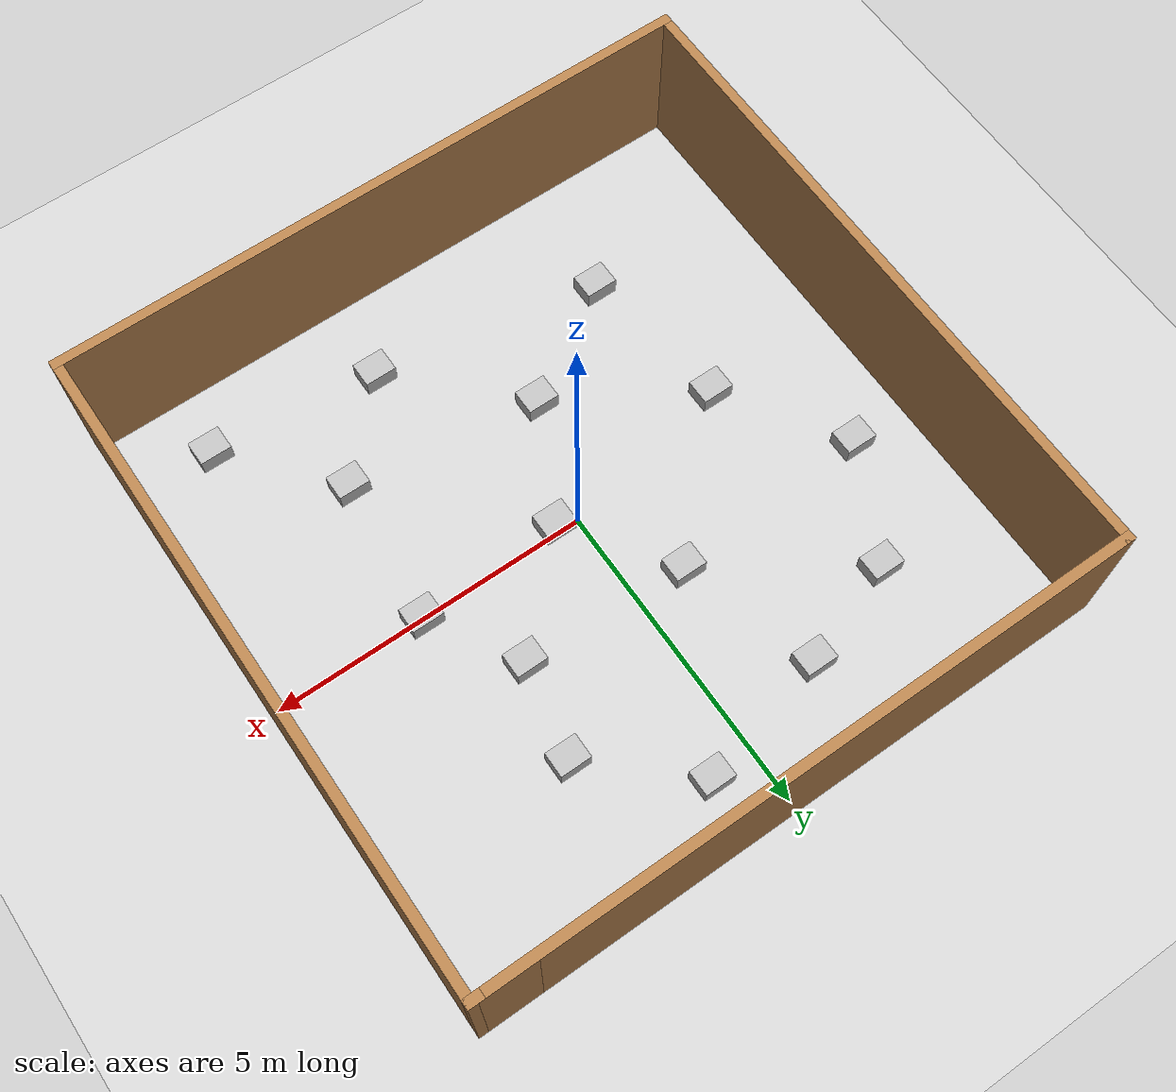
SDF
<sdf version="1.7">
 <world name="default">
  <light name="sun" type="directional">
   <pose>0 0 10 0 -0 0</pose>
   <diffuse>0.8 0.8 0.8 1</diffuse>
   <specular>0.2 0.2 0.2 1</specular>
   <attenuation>
    <range>1000</range>
    <constant>0.9</constant>
    <linear>0.01</linear>
    <quadratic>0.001</quadratic>
   </attenuation>
   <direction>-0.5 0.1 -0.9</direction>
   <spot><inner_angle>0</inner_angle><outer_angle>0</outer_angle><falloff>0</falloff></spot>
  </light>
  <model name="ground_plane">
   <static>1</static>
   <link name="link">
    <collision name="collision">
     <geometry><plane><normal>0 0 1</normal><size>100 100</size></plane></geometry>
     <surface>
      <contact><collide_bitmask>65535</collide_bitmask></contact>
      <friction><ode><mu>100</mu><mu2>50</mu2></ode></friction>
     </surface>
    </collision>
    <visual name="visual">
     <cast_shadows>0</cast_shadows>
     <geometry><plane><normal>0 0 1</normal><size>100 100</size></plane></geometry>
     <material>
      <script><uri>file://media/materials/scripts/gazebo.material</uri><name>Gazebo/Grey</name></script>
     </material>
    </visual>
   </link>
  </model>
  <gravity>0 0 -9.8</gravity>
  <magnetic_field>6e-06 2.3e-05 -4.2e-05</magnetic_field>
  <atmosphere type="adiabatic"/>
  <physics type="ode">
   <max_step_size>0.001</max_step_size>
   <real_time_factor>1</real_time_factor>
   <real_time_update_rate>1000</real_time_update_rate>
  </physics>
  <scene><ambient>0.4 0.4 0.4 1</ambient><background>0.7 0.7 0.7 1</background><shadows>1</shadows></scene>
  <spherical_coordinates>
   <surface_model>EARTH_WGS84</surface_model>
   <latitude_deg>0</latitude_deg>
   <longitude_deg>0</longitude_deg>
   <elevation>0</elevation>
   <heading_deg>0</heading_deg>
  </spherical_coordinates>
  <model name="empty.world">
   <pose>-0.00529 0.048934 0 0 -0 0</pose>
   <link name="Wall_10">
    <collision name="Wall_10_Collision">
     <geometry><box><size>10.25 0.15 2.5</size></box></geometry>
     <pose>0 0 1.25 0 -0 0</pose>
    </collision>
    <visual name="Wall_10_Visual">
     <pose>0 0 1.25 0 -0 0</pose>
     <geometry><box><size>10.25 0.15 2.5</size></box></geometry>
     <material>
      <script><uri>file://media/materials/scripts/gazebo.material</uri><name>Gazebo/Wood</name></script>
      <ambient>1 1 1 1</ambient>
     </material>
     <meta><layer>0</layer></meta>
    </visual>
    <pose>-0 -5.05 0 0 -0 0</pose>
   </link>
   <link name="Wall_12">
    <collision name="Wall_12_Collision">
     <geometry><box><size>10.25 0.15 2.5</size></box></geometry>
     <pose>0 0 1.25 0 -0 0</pose>
    </collision>
    <visual name="Wall_12_Visual">
     <pose>0 0 1.25 0 -0 0</pose>
     <geometry><box><size>10.25 0.15 2.5</size></box></geometry>
     <material>
      <script><uri>file://media/materials/scripts/gazebo.material</uri><name>Gazebo/Wood</name></script>
      <ambient>1 1 1 1</ambient>
     </material>
     <meta><layer>0</layer></meta>
    </visual>
    <pose>5.05 0 0 0 -0 1.5708</pose>
   </link>
   <link name="Wall_13">
    <collision name="Wall_13_Collision">
     <geometry><box><size>1 0.15 2.5</size></box></geometry>
     <pose>0 0 1.25 0 -0 0</pose>
    </collision>
    <visual name="Wall_13_Visual">
     <pose>0 0 1.25 0 -0 0</pose>
     <geometry><box><size>1 0.15 2.5</size></box></geometry>
     <material>
      <script><uri>file://media/materials/scripts/gazebo.material</uri><name>Gazebo/Wood</name></script>
      <ambient>1 1 1 1</ambient>
     </material>
     <meta><layer>0</layer></meta>
    </visual>
    <pose>4.625 5.05 0 0 -0 3.14159</pose>
   </link>
   <link name="Wall_8">
    <collision name="Wall_8_Collision">
     <geometry><box><size>10 0.15 2.5</size></box></geometry>
     <pose>0 0 1.25 0 -0 0</pose>
    </collision>
    <visual name="Wall_8_Visual">
     <pose>0 0 1.25 0 -0 0</pose>
     <geometry><box><size>10 0.15 2.5</size></box></geometry>
     <material>
      <script><uri>file://media/materials/scripts/gazebo.material</uri><name>Gazebo/Wood</name></script>
      <ambient>1 1 1 1</ambient>
     </material>
     <meta><layer>0</layer></meta>
    </visual>
    <pose>-0.125 5.05 0 0 -0 3.14159</pose>
   </link>
   <link name="Wall_9">
    <collision name="Wall_9_Collision">
     <geometry><box><size>10.25 0.15 2.5</size></box></geometry>
     <pose>0 0 1.25 0 -0 0</pose>
    </collision>
    <visual name="Wall_9_Visual">
     <pose>0 0 1.25 0 -0 0</pose>
     <geometry><box><size>10.25 0.15 2.5</size></box></geometry>
     <material>
      <script><uri>file://media/materials/scripts/gazebo.material</uri><name>Gazebo/Wood</name></script>
      <ambient>1 1 1 1</ambient>
     </material>
     <meta><layer>0</layer></meta>
    </visual>
    <pose>-5.05 0 0 0 -0 -1.5708</pose>
   </link>
   <static>1</static>
  </model>
  <model name="cardboard_box">
   <pose>-3.11624 3.03842 0.149 0 -0 0</pose>
   <link name="link">
    <inertial>
     <mass>2</mass>
     <inertia>
      <ixx>0.0416667</ixx>
      <ixy>0</ixy>
      <ixz>0</ixz>
      <iyy>0.0566667</iyy>
      <iyz>0</iyz>
      <izz>0.0683333</izz>
     </inertia>
    </inertial>
    <collision name="collision">
     <geometry><box><size>0.5 0.4 0.3</size></box></geometry>
     <surface>
      <friction><ode><mu>1</mu><mu2>1</mu2></ode></friction>
      <contact><ode><kp>1e+07</kp><kd>1</kd><min_depth>0.001</min_depth><max_vel>0.1</max_vel></ode></contact>
     </surface>
    </collision>
    <visual name="visual">
     <pose>0 0 -0.15 0 -0 0</pose>
     <geometry>
      <mesh><uri>model://cardboard_box/meshes/cardboard_box.dae</uri><scale>1.25932 1.00745 0.755591</scale></mesh>
     </geometry>
    </visual>
   </link>
  </model>
  <model name="cardboard_box_0">
   <pose>-1.46713 3.61694 0.149 0 -0 0</pose>
   <link name="link">
    <inertial>
     <mass>2</mass>
     <inertia>
      <ixx>0.0416667</ixx>
      <ixy>0</ixy>
      <ixz>0</ixz>
      <iyy>0.0566667</iyy>
      <iyz>0</iyz>
      <izz>0.0683333</izz>
     </inertia>
    </inertial>
    <collision name="collision">
     <geometry><box><size>0.5 0.4 0.3</size></box></geometry>
     <surface>
      <friction><ode><mu>1</mu><mu2>1</mu2></ode></friction>
      <contact><ode><kp>1e+07</kp><kd>1</kd><min_depth>0.001</min_depth><max_vel>0.1</max_vel></ode></contact>
     </surface>
    </collision>
    <visual name="visual">
     <pose>0 0 -0.15 0 -0 0</pose>
     <geometry>
      <mesh><uri>model://cardboard_box/meshes/cardboard_box.dae</uri><scale>1.25932 1.00745 0.755591</scale></mesh>
     </geometry>
    </visual>
   </link>
  </model>
  <model name="cardboard_box_1">
   <pose>1.82248 1.35756 0.149 0 -0 0</pose>
   <link name="link">
    <inertial>
     <mass>2</mass>
     <inertia>
      <ixx>0.0416667</ixx>
      <ixy>0</ixy>
      <ixz>0</ixz>
      <iyy>0.0566667</iyy>
      <iyz>0</iyz>
      <izz>0.0683333</izz>
     </inertia>
    </inertial>
    <collision name="collision">
     <geometry><box><size>0.5 0.4 0.3</size></box></geometry>
     <surface>
      <friction><ode><mu>1</mu><mu2>1</mu2></ode></friction>
      <contact><ode><kp>1e+07</kp><kd>1</kd><min_depth>0.001</min_depth><max_vel>0.1</max_vel></ode></contact>
     </surface>
    </collision>
    <visual name="visual">
     <pose>0 0 -0.15 0 -0 0</pose>
     <geometry>
      <mesh><uri>model://cardboard_box/meshes/cardboard_box.dae</uri><scale>1.25932 1.00745 0.755591</scale></mesh>
     </geometry>
    </visual>
   </link>
  </model>
  <model name="cardboard_box_2">
   <pose>2.12774 2.84388 0.149 0 -0 0</pose>
   <link name="link">
    <inertial>
     <mass>2</mass>
     <inertia>
      <ixx>0.0416667</ixx>
      <ixy>0</ixy>
      <ixz>0</ixz>
      <iyy>0.0566667</iyy>
      <iyz>0</iyz>
      <izz>0.0683333</izz>
     </inertia>
    </inertial>
    <collision name="collision">
     <geometry><box><size>0.5 0.4 0.3</size></box></geometry>
     <surface>
      <friction><ode><mu>1</mu><mu2>1</mu2></ode></friction>
      <contact><ode><kp>1e+07</kp><kd>1</kd><min_depth>0.001</min_depth><max_vel>0.1</max_vel></ode></contact>
     </surface>
    </collision>
    <visual name="visual">
     <pose>0 0 -0.15 0 -0 0</pose>
     <geometry>
      <mesh><uri>model://cardboard_box/meshes/cardboard_box.dae</uri><scale>1.25932 1.00745 0.755591</scale></mesh>
     </geometry>
    </visual>
   </link>
  </model>
  <model name="cardboard_box_3">
   <pose>-0.809326 1.4649 0.149 0 -0 0</pose>
   <link name="link">
    <inertial>
     <mass>2</mass>
     <inertia>
      <ixx>0.0416667</ixx>
      <ixy>0</ixy>
      <ixz>0</ixz>
      <iyy>0.0566667</iyy>
      <iyz>0</iyz>
      <izz>0.0683333</izz>
     </inertia>
    </inertial>
    <collision name="collision">
     <geometry><box><size>0.5 0.4 0.3</size></box></geometry>
     <surface>
      <friction><ode><mu>1</mu><mu2>1</mu2></ode></friction>
      <contact><ode><kp>1e+07</kp><kd>1</kd><min_depth>0.001</min_depth><max_vel>0.1</max_vel></ode></contact>
     </surface>
    </collision>
    <visual name="visual">
     <pose>0 0 -0.15 0 -0 0</pose>
     <geometry>
      <mesh><uri>model://cardboard_box/meshes/cardboard_box.dae</uri><scale>1.25932 1.00745 0.755591</scale></mesh>
     </geometry>
    </visual>
   </link>
  </model>
  <model name="cardboard_box_4">
   <pose>-2.80316 -0.579289 0.149 0 -0 0</pose>
   <link name="link">
    <inertial>
     <mass>2</mass>
     <inertia>
      <ixx>0.0416667</ixx>
      <ixy>0</ixy>
      <ixz>0</ixz>
      <iyy>0.0566667</iyy>
      <iyz>0</iyz>
      <izz>0.0683333</izz>
     </inertia>
    </inertial>
    <collision name="collision">
     <geometry><box><size>0.5 0.4 0.3</size></box></geometry>
     <surface>
      <friction><ode><mu>1</mu><mu2>1</mu2></ode></friction>
      <contact><ode><kp>1e+07</kp><kd>1</kd><min_depth>0.001</min_depth><max_vel>0.1</max_vel></ode></contact>
     </surface>
    </collision>
    <visual name="visual">
     <pose>0 0 -0.15 0 -0 0</pose>
     <geometry>
      <mesh><uri>model://cardboard_box/meshes/cardboard_box.dae</uri><scale>1.25932 1.00745 0.755591</scale></mesh>
     </geometry>
    </visual>
   </link>
  </model>
  <model name="cardboard_box_5">
   <pose>0.311895 -0.125301 0.149 0 -0 0</pose>
   <link name="link">
    <inertial>
     <mass>2</mass>
     <inertia>
      <ixx>0.0416667</ixx>
      <ixy>0</ixy>
      <ixz>0</ixz>
      <iyy>0.0566667</iyy>
      <iyz>0</iyz>
      <izz>0.0683333</izz>
     </inertia>
    </inertial>
    <collision name="collision">
     <geometry><box><size>0.5 0.4 0.3</size></box></geometry>
     <surface>
      <friction><ode><mu>1</mu><mu2>1</mu2></ode></friction>
      <contact><ode><kp>1e+07</kp><kd>1</kd><min_depth>0.001</min_depth><max_vel>0.1</max_vel></ode></contact>
     </surface>
    </collision>
    <visual name="visual">
     <pose>0 0 -0.15 0 -0 0</pose>
     <geometry>
      <mesh><uri>model://cardboard_box/meshes/cardboard_box.dae</uri><scale>1.25932 1.00745 0.755591</scale></mesh>
     </geometry>
    </visual>
   </link>
  </model>
  <model name="cardboard_box_6">
   <pose>-0.596514 -1.91081 0.149 0 -0 0</pose>
   <link name="link">
    <inertial>
     <mass>2</mass>
     <inertia>
      <ixx>0.0416667</ixx>
      <ixy>0</ixy>
      <ixz>0</ixz>
      <iyy>0.0566667</iyy>
      <iyz>0</iyz>
      <izz>0.0683333</izz>
     </inertia>
    </inertial>
    <collision name="collision">
     <geometry><box><size>0.5 0.4 0.3</size></box></geometry>
     <surface>
      <friction><ode><mu>1</mu><mu2>1</mu2></ode></friction>
      <contact><ode><kp>1e+07</kp><kd>1</kd><min_depth>0.001</min_depth><max_vel>0.1</max_vel></ode></contact>
     </surface>
    </collision>
    <visual name="visual">
     <pose>0 0 -0.15 0 -0 0</pose>
     <geometry>
      <mesh><uri>model://cardboard_box/meshes/cardboard_box.dae</uri><scale>1.25932 1.00745 0.755591</scale></mesh>
     </geometry>
    </visual>
   </link>
  </model>
  <model name="cardboard_box_7">
   <pose>2.64261 -0.010823 0.149 0 -0 0</pose>
   <link name="link">
    <inertial>
     <mass>2</mass>
     <inertia>
      <ixx>0.0416667</ixx>
      <ixy>0</ixy>
      <ixz>0</ixz>
      <iyy>0.0566667</iyy>
      <iyz>0</iyz>
      <izz>0.0683333</izz>
     </inertia>
    </inertial>
    <collision name="collision">
     <geometry><box><size>0.5 0.4 0.3</size></box></geometry>
     <surface>
      <friction><ode><mu>1</mu><mu2>1</mu2></ode></friction>
      <contact><ode><kp>1e+07</kp><kd>1</kd><min_depth>0.001</min_depth><max_vel>0.1</max_vel></ode></contact>
     </surface>
    </collision>
    <visual name="visual">
     <pose>0 0 -0.15 0 -0 0</pose>
     <geometry>
      <mesh><uri>model://cardboard_box/meshes/cardboard_box.dae</uri><scale>1.25932 1.00745 0.755591</scale></mesh>
     </geometry>
    </visual>
   </link>
  </model>
  <model name="cardboard_box_8">
   <pose>2.41556 -2.32036 0.149 0 -0 0</pose>
   <link name="link">
    <inertial>
     <mass>2</mass>
     <inertia>
      <ixx>0.0416667</ixx>
      <ixy>0</ixy>
      <ixz>0</ixz>
      <iyy>0.0566667</iyy>
      <iyz>0</iyz>
      <izz>0.0683333</izz>
     </inertia>
    </inertial>
    <collision name="collision">
     <geometry><box><size>0.5 0.4 0.3</size></box></geometry>
     <surface>
      <friction><ode><mu>1</mu><mu2>1</mu2></ode></friction>
      <contact><ode><kp>1e+07</kp><kd>1</kd><min_depth>0.001</min_depth><max_vel>0.1</max_vel></ode></contact>
     </surface>
    </collision>
    <visual name="visual">
     <pose>0 0 -0.15 0 -0 0</pose>
     <geometry>
      <mesh><uri>model://cardboard_box/meshes/cardboard_box.dae</uri><scale>1.25932 1.00745 0.755591</scale></mesh>
     </geometry>
    </visual>
   </link>
  </model>
  <model name="cardboard_box_9">
   <pose>-2.42718 -3.03082 0.149 0 -0 0</pose>
   <link name="link">
    <inertial>
     <mass>2</mass>
     <inertia>
      <ixx>0.0416667</ixx>
      <ixy>0</ixy>
      <ixz>0</ixz>
      <iyy>0.0566667</iyy>
      <iyz>0</iyz>
      <izz>0.0683333</izz>
     </inertia>
    </inertial>
    <collision name="collision">
     <geometry><box><size>0.5 0.4 0.3</size></box></geometry>
     <surface>
      <friction><ode><mu>1</mu><mu2>1</mu2></ode></friction>
      <contact><ode><kp>1e+07</kp><kd>1</kd><min_depth>0.001</min_depth><max_vel>0.1</max_vel></ode></contact>
     </surface>
    </collision>
    <visual name="visual">
     <pose>0 0 -0.15 0 -0 0</pose>
     <geometry>
      <mesh><uri>model://cardboard_box/meshes/cardboard_box.dae</uri><scale>1.25932 1.00745 0.755591</scale></mesh>
     </geometry>
    </visual>
   </link>
  </model>
  <model name="cardboard_box_10">
   <pose>-4.02443 1.27231 0.149 0 -0 0</pose>
   <link name="link">
    <inertial>
     <mass>2</mass>
     <inertia>
      <ixx>0.0416667</ixx>
      <ixy>0</ixy>
      <ixz>0</ixz>
      <iyy>0.0566667</iyy>
      <iyz>0</iyz>
      <izz>0.0683333</izz>
     </inertia>
    </inertial>
    <collision name="collision">
     <geometry><box><size>0.5 0.4 0.3</size></box></geometry>
     <surface>
      <friction><ode><mu>1</mu><mu2>1</mu2></ode></friction>
      <contact><ode><kp>1e+07</kp><kd>1</kd><min_depth>0.001</min_depth><max_vel>0.1</max_vel></ode></contact>
     </surface>
    </collision>
    <visual name="visual">
     <pose>0 0 -0.15 0 -0 0</pose>
     <geometry>
      <mesh><uri>model://cardboard_box/meshes/cardboard_box.dae</uri><scale>1.25932 1.00745 0.755591</scale></mesh>
     </geometry>
    </visual>
   </link>
  </model>
  <model name="cardboard_box_11">
   <pose>0.6843 4.15406 0.149 0 -0 0</pose>
   <link name="link">
    <inertial>
     <mass>2</mass>
     <inertia>
      <ixx>0.0416667</ixx>
      <ixy>0</ixy>
      <ixz>0</ixz>
      <iyy>0.0566667</iyy>
      <iyz>0</iyz>
      <izz>0.0683333</izz>
     </inertia>
    </inertial>
    <collision name="collision">
     <geometry><box><size>0.5 0.4 0.3</size></box></geometry>
     <surface>
      <friction><ode><mu>1</mu><mu2>1</mu2></ode></friction>
      <contact><ode><kp>1e+07</kp><kd>1</kd><min_depth>0.001</min_depth><max_vel>0.1</max_vel></ode></contact>
     </surface>
    </collision>
    <visual name="visual">
     <pose>0 0 -0.15 0 -0 0</pose>
     <geometry>
      <mesh><uri>model://cardboard_box/meshes/cardboard_box.dae</uri><scale>1.25932 1.00745 0.755591</scale></mesh>
     </geometry>
    </visual>
   </link>
  </model>
  <model name="cardboard_box_12">
   <pose>1.12656 -3.66269 0.149021 2e-06 -2e-06 -0</pose>
   <link name="link">
    <inertial>
     <mass>2</mass>
     <inertia>
      <ixx>0.0416667</ixx>
      <ixy>0</ixy>
      <ixz>0</ixz>
      <iyy>0.0566667</iyy>
      <iyz>0</iyz>
      <izz>0.0683333</izz>
     </inertia>
    </inertial>
    <collision name="collision">
     <geometry><box><size>0.5 0.4 0.3</size></box></geometry>
     <surface>
      <friction><ode><mu>1</mu><mu2>1</mu2></ode></friction>
      <contact><ode><kp>1e+07</kp><kd>1</kd><min_depth>0.001</min_depth><max_vel>0.1</max_vel></ode></contact>
     </surface>
    </collision>
    <visual name="visual">
     <pose>0 0 -0.15 0 -0 0</pose>
     <geometry>
      <mesh><uri>model://cardboard_box/meshes/cardboard_box.dae</uri><scale>1.25932 1.00745 0.755591</scale></mesh>
     </geometry>
    </visual>
   </link>
  </model>
  <model name="cardboard_box_13">
   <pose>3.77711 -3.93057 0.14951 2e-06 -2e-06 -0</pose>
   <link name="link">
    <inertial>
     <mass>2</mass>
     <inertia>
      <ixx>0.0416667</ixx>
      <ixy>0</ixy>
      <ixz>0</ixz>
      <iyy>0.0566667</iyy>
      <iyz>0</iyz>
      <izz>0.0683333</izz>
     </inertia>
    </inertial>
    <collision name="collision">
     <geometry><box><size>0.5 0.4 0.3</size></box></geometry>
     <surface>
      <friction><ode><mu>1</mu><mu2>1</mu2></ode></friction>
      <contact><ode><kp>1e+07</kp><kd>1</kd><min_depth>0.001</min_depth><max_vel>0.1</max_vel></ode></contact>
     </surface>
    </collision>
    <visual name="visual">
     <pose>0 0 -0.15 0 -0 0</pose>
     <geometry>
      <mesh><uri>model://cardboard_box/meshes/cardboard_box.dae</uri><scale>1.25932 1.00745 0.755591</scale></mesh>
     </geometry>
    </visual>
   </link>
  </model>
 </world>
</sdf>
